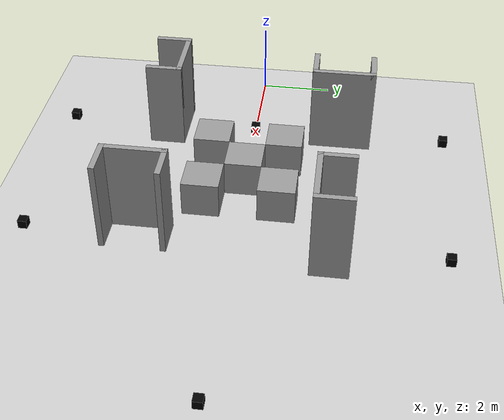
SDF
<sdf version="1.6">
 <world name="default">
  <light name="sun" type="directional">
   <pose>0 0 10 0 -0 0</pose>
   <diffuse>0.8 0.8 0.8 1</diffuse>
   <specular>0.2 0.2 0.2 1</specular>
   <attenuation>
    <range>1000</range>
    <constant>0.9</constant>
    <linear>0.01</linear>
    <quadratic>0.001</quadratic>
   </attenuation>
   <direction>-0.5 0.1 -0.9</direction>
  </light>
  <model name="ground_plane">
   <static>1</static>
   <link name="link">
    <collision name="collision">
     <geometry><plane><normal>0 0 1</normal><size>100 100</size></plane></geometry>
     <surface>
      <contact><collide_bitmask>65535</collide_bitmask></contact>
      <friction><ode><mu>100</mu><mu2>50</mu2></ode></friction>
     </surface>
    </collision>
    <visual name="visual">
     <cast_shadows>0</cast_shadows>
     <geometry><plane><normal>0 0 1</normal><size>100 100</size></plane></geometry>
     <material>
      <script><uri>file://media/materials/scripts/gazebo.material</uri><name>Gazebo/Grey</name></script>
     </material>
    </visual>
   </link>
  </model>
  <gravity>0 0 -9.8</gravity>
  <magnetic_field>6e-06 2.3e-05 -4.2e-05</magnetic_field>
  <atmosphere type="adiabatic"/>
  <physics name="default_physics" default="0" type="ode">
   <max_step_size>0.001</max_step_size>
   <real_time_factor>1</real_time_factor>
   <real_time_update_rate>1000</real_time_update_rate>
  </physics>
  <scene><ambient>0.4 0.4 0.4 1</ambient><background>0.7 0.7 0.7 1</background><shadows>1</shadows></scene>
  <audio><device>default</device></audio>
  <spherical_coordinates>
   <surface_model>EARTH_WGS84</surface_model>
   <latitude_deg>0</latitude_deg>
   <longitude_deg>0</longitude_deg>
   <elevation>0</elevation>
   <heading_deg>0</heading_deg>
  </spherical_coordinates>
  <model name="aruco_box_0">
   <link name="link_0">
    <inertial>
     <mass>1</mass>
     <inertia>
      <ixx>0.166667</ixx>
      <ixy>0</ixy>
      <ixz>0</ixz>
      <iyy>0.166667</iyy>
      <iyz>0</iyz>
      <izz>0.166667</izz>
     </inertia>
    </inertial>
    <visual name="visual">
     <geometry><box><size>0.24 0.24 0.24</size></box></geometry>
     <material>
      <lighting>1</lighting>
      <script>
       <uri>model://aruco_box_0/materials/scripts</uri>
       <uri>model://aruco_box_0/materials/textures</uri>
       <name>Aruco/Id0</name>
      </script>
      <shader type="vertex"><normal_map>__default__</normal_map></shader>
      <ambient>0 0 0 1</ambient>
      <diffuse>0 0 0 1</diffuse>
      <specular>0 0 0 0</specular>
      <emissive>1 1 1 1</emissive>
     </material>
    </visual>
    <collision name="collision">
     <geometry><box><size>0.24 0.24 0.24</size></box></geometry>
     <surface>
      <friction>
       <ode><mu>1</mu><mu2>1</mu2><fdir1>0 0 0</fdir1><slip1>0</slip1><slip2>0</slip2></ode>
       <torsional>
        <coefficient>1</coefficient>
        <patch_radius>0</patch_radius>
        <surface_radius>0</surface_radius>
        <use_patch_radius>1</use_patch_radius>
        <ode><slip>0</slip></ode>
       </torsional>
      </friction>
      <bounce><restitution_coefficient>0</restitution_coefficient><threshold>1e+06</threshold></bounce>
      <contact>
       <collide_without_contact>0</collide_without_contact>
       <collide_without_contact_bitmask>1</collide_without_contact_bitmask>
       <collide_bitmask>1</collide_bitmask>
       <ode>
        <soft_cfm>0</soft_cfm>
        <soft_erp>0.2</soft_erp>
        <kp>1e+13</kp>
        <kd>1</kd>
        <max_vel>0.01</max_vel>
        <min_depth>0</min_depth>
       </ode>
       <bullet>
        <split_impulse>1</split_impulse>
        <split_impulse_penetration_threshold>-0.01</split_impulse_penetration_threshold>
        <soft_cfm>0</soft_cfm>
        <soft_erp>0.2</soft_erp>
        <kp>1e+13</kp>
        <kd>1</kd>
       </bullet>
      </contact>
     </surface>
    </collision>
   </link>
   <static>0</static>
   <pose>2.5 0 0.12 0 -0 0</pose>
  </model>
  <model name="aruco_box_1">
   <link name="link_0">
    <inertial>
     <mass>1</mass>
     <inertia>
      <ixx>0.166667</ixx>
      <ixy>0</ixy>
      <ixz>0</ixz>
      <iyy>0.166667</iyy>
      <iyz>0</iyz>
      <izz>0.166667</izz>
     </inertia>
    </inertial>
    <visual name="visual">
     <geometry><box><size>0.24 0.24 0.24</size></box></geometry>
     <material>
      <lighting>1</lighting>
      <script>
       <uri>model://aruco_box_1/materials/scripts</uri>
       <uri>model://aruco_box_1/materials/textures</uri>
       <name>Aruco/Id1</name>
      </script>
      <shader type="vertex"><normal_map>__default__</normal_map></shader>
      <ambient>0 0 0 1</ambient>
      <diffuse>0 0 0 1</diffuse>
      <specular>0 0 0 0</specular>
      <emissive>1 1 1 1</emissive>
     </material>
    </visual>
    <collision name="collision">
     <geometry><box><size>0.24 0.24 0.24</size></box></geometry>
     <surface>
      <friction>
       <ode><mu>1</mu><mu2>1</mu2><fdir1>0 0 0</fdir1><slip1>0</slip1><slip2>0</slip2></ode>
       <torsional>
        <coefficient>1</coefficient>
        <patch_radius>0</patch_radius>
        <surface_radius>0</surface_radius>
        <use_patch_radius>1</use_patch_radius>
        <ode><slip>0</slip></ode>
       </torsional>
      </friction>
      <bounce><restitution_coefficient>0</restitution_coefficient><threshold>1e+06</threshold></bounce>
      <contact>
       <collide_without_contact>0</collide_without_contact>
       <collide_without_contact_bitmask>1</collide_without_contact_bitmask>
       <collide_bitmask>1</collide_bitmask>
       <ode>
        <soft_cfm>0</soft_cfm>
        <soft_erp>0.2</soft_erp>
        <kp>1e+13</kp>
        <kd>1</kd>
        <max_vel>0.01</max_vel>
        <min_depth>0</min_depth>
       </ode>
       <bullet>
        <split_impulse>1</split_impulse>
        <split_impulse_penetration_threshold>-0.01</split_impulse_penetration_threshold>
        <soft_cfm>0</soft_cfm>
        <soft_erp>0.2</soft_erp>
        <kp>1e+13</kp>
        <kd>1</kd>
       </bullet>
      </contact>
     </surface>
    </collision>
   </link>
   <static>0</static>
   <pose>2.5 5.5 0.12 0 -0 0</pose>
  </model>
  <model name="aruco_box_2">
   <link name="link_0">
    <inertial>
     <mass>1</mass>
     <inertia>
      <ixx>0.166667</ixx>
      <ixy>0</ixy>
      <ixz>0</ixz>
      <iyy>0.166667</iyy>
      <iyz>0</iyz>
      <izz>0.166667</izz>
     </inertia>
    </inertial>
    <visual name="visual">
     <geometry><box><size>0.24 0.24 0.24</size></box></geometry>
     <material>
      <lighting>1</lighting>
      <script>
       <uri>model://aruco_box_2/materials/scripts</uri>
       <uri>model://aruco_box_2/materials/textures</uri>
       <name>Aruco/Id2</name>
      </script>
      <shader type="vertex"><normal_map>__default__</normal_map></shader>
      <ambient>0 0 0 1</ambient>
      <diffuse>0 0 0 1</diffuse>
      <specular>0 0 0 0</specular>
      <emissive>1 1 1 1</emissive>
     </material>
    </visual>
    <collision name="collision">
     <geometry><box><size>0.24 0.24 0.24</size></box></geometry>
     <surface>
      <friction>
       <ode><mu>1</mu><mu2>1</mu2><fdir1>0 0 0</fdir1><slip1>0</slip1><slip2>0</slip2></ode>
       <torsional>
        <coefficient>1</coefficient>
        <patch_radius>0</patch_radius>
        <surface_radius>0</surface_radius>
        <use_patch_radius>1</use_patch_radius>
        <ode><slip>0</slip></ode>
       </torsional>
      </friction>
      <bounce><restitution_coefficient>0</restitution_coefficient><threshold>1e+06</threshold></bounce>
      <contact>
       <collide_without_contact>0</collide_without_contact>
       <collide_without_contact_bitmask>1</collide_without_contact_bitmask>
       <collide_bitmask>1</collide_bitmask>
       <ode>
        <soft_cfm>0</soft_cfm>
        <soft_erp>0.2</soft_erp>
        <kp>1e+13</kp>
        <kd>1</kd>
        <max_vel>0.01</max_vel>
        <min_depth>0</min_depth>
       </ode>
       <bullet>
        <split_impulse>1</split_impulse>
        <split_impulse_penetration_threshold>-0.01</split_impulse_penetration_threshold>
        <soft_cfm>0</soft_cfm>
        <soft_erp>0.2</soft_erp>
        <kp>1e+13</kp>
        <kd>1</kd>
       </bullet>
      </contact>
     </surface>
    </collision>
   </link>
   <static>0</static>
   <pose>7.5 5.5 0.12 0 -0 0</pose>
  </model>
  <model name="aruco_box_3">
   <link name="link_0">
    <inertial>
     <mass>1</mass>
     <inertia>
      <ixx>0.166667</ixx>
      <ixy>0</ixy>
      <ixz>0</ixz>
      <iyy>0.166667</iyy>
      <iyz>0</iyz>
      <izz>0.166667</izz>
     </inertia>
    </inertial>
    <visual name="visual">
     <geometry><box><size>0.24 0.24 0.24</size></box></geometry>
     <material>
      <lighting>1</lighting>
      <script>
       <uri>model://aruco_box_3/materials/scripts</uri>
       <uri>model://aruco_box_3/materials/textures</uri>
       <name>Aruco/Id3</name>
      </script>
      <shader type="vertex"><normal_map>__default__</normal_map></shader>
      <ambient>0 0 0 1</ambient>
      <diffuse>0 0 0 1</diffuse>
      <specular>0 0 0 0</specular>
      <emissive>1 1 1 1</emissive>
     </material>
    </visual>
    <collision name="collision">
     <geometry><box><size>0.24 0.24 0.24</size></box></geometry>
     <surface>
      <friction>
       <ode><mu>1</mu><mu2>1</mu2><fdir1>0 0 0</fdir1><slip1>0</slip1><slip2>0</slip2></ode>
       <torsional>
        <coefficient>1</coefficient>
        <patch_radius>0</patch_radius>
        <surface_radius>0</surface_radius>
        <use_patch_radius>1</use_patch_radius>
        <ode><slip>0</slip></ode>
       </torsional>
      </friction>
      <bounce><restitution_coefficient>0</restitution_coefficient><threshold>1e+06</threshold></bounce>
      <contact>
       <collide_without_contact>0</collide_without_contact>
       <collide_without_contact_bitmask>1</collide_without_contact_bitmask>
       <collide_bitmask>1</collide_bitmask>
       <ode>
        <soft_cfm>0</soft_cfm>
        <soft_erp>0.2</soft_erp>
        <kp>1e+13</kp>
        <kd>1</kd>
        <max_vel>0.01</max_vel>
        <min_depth>0</min_depth>
       </ode>
       <bullet>
        <split_impulse>1</split_impulse>
        <split_impulse_penetration_threshold>-0.01</split_impulse_penetration_threshold>
        <soft_cfm>0</soft_cfm>
        <soft_erp>0.2</soft_erp>
        <kp>1e+13</kp>
        <kd>1</kd>
       </bullet>
      </contact>
     </surface>
    </collision>
   </link>
   <static>0</static>
   <pose>12.5 0 0.12 0 -0 0</pose>
  </model>
  <model name="aruco_box_4">
   <link name="link_0">
    <inertial>
     <mass>1</mass>
     <inertia>
      <ixx>0.166667</ixx>
      <ixy>0</ixy>
      <ixz>0</ixz>
      <iyy>0.166667</iyy>
      <iyz>0</iyz>
      <izz>0.166667</izz>
     </inertia>
    </inertial>
    <visual name="visual">
     <geometry><box><size>0.24 0.24 0.24</size></box></geometry>
     <material>
      <lighting>1</lighting>
      <script>
       <uri>model://aruco_box_4/materials/scripts</uri>
       <uri>model://aruco_box_4/materials/textures</uri>
       <name>Aruco/Id4</name>
      </script>
      <shader type="vertex"><normal_map>__default__</normal_map></shader>
      <ambient>0 0 0 1</ambient>
      <diffuse>0 0 0 1</diffuse>
      <specular>0 0 0 0</specular>
      <emissive>1 1 1 1</emissive>
     </material>
    </visual>
    <collision name="collision">
     <geometry><box><size>0.24 0.24 0.24</size></box></geometry>
     <surface>
      <friction>
       <ode><mu>1</mu><mu2>1</mu2><fdir1>0 0 0</fdir1><slip1>0</slip1><slip2>0</slip2></ode>
       <torsional>
        <coefficient>1</coefficient>
        <patch_radius>0</patch_radius>
        <surface_radius>0</surface_radius>
        <use_patch_radius>1</use_patch_radius>
        <ode><slip>0</slip></ode>
       </torsional>
      </friction>
      <bounce><restitution_coefficient>0</restitution_coefficient><threshold>1e+06</threshold></bounce>
      <contact>
       <collide_without_contact>0</collide_without_contact>
       <collide_without_contact_bitmask>1</collide_without_contact_bitmask>
       <collide_bitmask>1</collide_bitmask>
       <ode>
        <soft_cfm>0</soft_cfm>
        <soft_erp>0.2</soft_erp>
        <kp>1e+13</kp>
        <kd>1</kd>
        <max_vel>0.01</max_vel>
        <min_depth>0</min_depth>
       </ode>
       <bullet>
        <split_impulse>1</split_impulse>
        <split_impulse_penetration_threshold>-0.01</split_impulse_penetration_threshold>
        <soft_cfm>0</soft_cfm>
        <soft_erp>0.2</soft_erp>
        <kp>1e+13</kp>
        <kd>1</kd>
       </bullet>
      </contact>
     </surface>
    </collision>
   </link>
   <static>0</static>
   <pose>7.5 -5.5 0.12 0 -0 0</pose>
  </model>
  <model name="aruco_box_5">
   <link name="link_0">
    <inertial>
     <mass>1</mass>
     <inertia>
      <ixx>0.166667</ixx>
      <ixy>0</ixy>
      <ixz>0</ixz>
      <iyy>0.166667</iyy>
      <iyz>0</iyz>
      <izz>0.166667</izz>
     </inertia>
    </inertial>
    <visual name="visual">
     <geometry><box><size>0.24 0.24 0.24</size></box></geometry>
     <material>
      <lighting>1</lighting>
      <script>
       <uri>model://aruco_box_5/materials/scripts</uri>
       <uri>model://aruco_box_5/materials/textures</uri>
       <name>Aruco/Id5</name>
      </script>
      <shader type="vertex"><normal_map>__default__</normal_map></shader>
      <ambient>0 0 0 1</ambient>
      <diffuse>0 0 0 1</diffuse>
      <specular>0 0 0 0</specular>
      <emissive>1 1 1 1</emissive>
     </material>
    </visual>
    <collision name="collision">
     <geometry><box><size>0.24 0.24 0.24</size></box></geometry>
     <surface>
      <friction>
       <ode><mu>1</mu><mu2>1</mu2><fdir1>0 0 0</fdir1><slip1>0</slip1><slip2>0</slip2></ode>
       <torsional>
        <coefficient>1</coefficient>
        <patch_radius>0</patch_radius>
        <surface_radius>0</surface_radius>
        <use_patch_radius>1</use_patch_radius>
        <ode><slip>0</slip></ode>
       </torsional>
      </friction>
      <bounce><restitution_coefficient>0</restitution_coefficient><threshold>1e+06</threshold></bounce>
      <contact>
       <collide_without_contact>0</collide_without_contact>
       <collide_without_contact_bitmask>1</collide_without_contact_bitmask>
       <collide_bitmask>1</collide_bitmask>
       <ode>
        <soft_cfm>0</soft_cfm>
        <soft_erp>0.2</soft_erp>
        <kp>1e+13</kp>
        <kd>1</kd>
        <max_vel>0.01</max_vel>
        <min_depth>0</min_depth>
       </ode>
       <bullet>
        <split_impulse>1</split_impulse>
        <split_impulse_penetration_threshold>-0.01</split_impulse_penetration_threshold>
        <soft_cfm>0</soft_cfm>
        <soft_erp>0.2</soft_erp>
        <kp>1e+13</kp>
        <kd>1</kd>
       </bullet>
      </contact>
     </surface>
    </collision>
   </link>
   <static>0</static>
   <pose>2.5 -5.5 0.12 0 -0 0</pose>
  </model>
  <model name="unit_box_11">
   <pose>5 -0 0.499995 0 1e-05 0</pose>
   <link name="link">
    <inertial>
     <mass>1</mass>
     <inertia>
      <ixx>0.166667</ixx>
      <ixy>0</ixy>
      <ixz>0</ixz>
      <iyy>0.166667</iyy>
      <iyz>0</iyz>
      <izz>0.166667</izz>
     </inertia>
    </inertial>
    <collision name="collision"><geometry><box><size>1 1 1</size></box></geometry></collision>
    <visual name="visual">
     <geometry><box><size>1 1 1</size></box></geometry>
     <material>
      <script><name>Gazebo/Grey</name><uri>file://media/materials/scripts/gazebo.material</uri></script>
     </material>
    </visual>
   </link>
  </model>
  <model name="simple_wall">
   <pose>2.5 2.5 0 0 0 -1.57</pose>
   <link name="Wall_34">
    <collision name="Wall_34_Collision">
     <geometry><box><size>1 0.15 2.5</size></box></geometry>
     <pose>0 0 1.25 0 -0 0</pose>
    </collision>
    <visual name="Wall_34_Visual">
     <pose>0 0 1.25 0 -0 0</pose>
     <geometry><box><size>1 0.15 2.5</size></box></geometry>
     <material>
      <script><uri>file://media/materials/scripts/gazebo.material</uri><name>Gazebo/Grey</name></script>
      <ambient>1 1 1 1</ambient>
     </material>
     <meta><layer>0</layer></meta>
    </visual>
    <pose>-0.8 0 0 0 -0 1.5708</pose>
   </link>
   <link name="Wall_35">
    <collision name="Wall_35_Collision">
     <geometry><box><size>1.75 0.15 2.5</size></box></geometry>
     <pose>0 0 1.25 0 -0 0</pose>
    </collision>
    <visual name="Wall_35_Visual">
     <pose>0 0 1.25 0 -0 0</pose>
     <geometry><box><size>1.75 0.15 2.5</size></box></geometry>
     <material>
      <script><uri>file://media/materials/scripts/gazebo.material</uri><name>Gazebo/Grey</name></script>
      <ambient>1 1 1 1</ambient>
     </material>
     <meta><layer>0</layer></meta>
    </visual>
    <pose>0 0.425 0 0 -0 0</pose>
   </link>
   <link name="Wall_36">
    <collision name="Wall_36_Collision">
     <geometry><box><size>1 0.15 2.5</size></box></geometry>
     <pose>0 0 1.25 0 -0 0</pose>
    </collision>
    <visual name="Wall_36_Visual">
     <pose>0 0 1.25 0 -0 0</pose>
     <geometry><box><size>1 0.15 2.5</size></box></geometry>
     <material>
      <script><uri>file://media/materials/scripts/gazebo.material</uri><name>Gazebo/Grey</name></script>
      <ambient>1 1 1 1</ambient>
     </material>
     <meta><layer>0</layer></meta>
    </visual>
    <pose>0.8 0 0 0 -0 -1.5708</pose>
   </link>
   <static>1</static>
  </model>
  <model name="simple_wall_0">
   <pose>7.5 2.5 0 0 -0 -3.14159</pose>
   <link name="Wall_34">
    <collision name="Wall_34_Collision">
     <geometry><box><size>1 0.15 2.5</size></box></geometry>
     <pose>0 0 1.25 0 -0 0</pose>
    </collision>
    <visual name="Wall_34_Visual">
     <pose>0 0 1.25 0 -0 0</pose>
     <geometry><box><size>1 0.15 2.5</size></box></geometry>
     <material>
      <script><uri>file://media/materials/scripts/gazebo.material</uri><name>Gazebo/Grey</name></script>
      <ambient>1 1 1 1</ambient>
     </material>
     <meta><layer>0</layer></meta>
    </visual>
    <pose>-0.8 0 0 0 -0 1.5708</pose>
   </link>
   <link name="Wall_35">
    <collision name="Wall_35_Collision">
     <geometry><box><size>1.75 0.15 2.5</size></box></geometry>
     <pose>0 0 1.25 0 -0 0</pose>
    </collision>
    <visual name="Wall_35_Visual">
     <pose>0 0 1.25 0 -0 0</pose>
     <geometry><box><size>1.75 0.15 2.5</size></box></geometry>
     <material>
      <script><uri>file://media/materials/scripts/gazebo.material</uri><name>Gazebo/Grey</name></script>
      <ambient>1 1 1 1</ambient>
     </material>
     <meta><layer>0</layer></meta>
    </visual>
    <pose>0 0.425 0 0 -0 0</pose>
   </link>
   <link name="Wall_36">
    <collision name="Wall_36_Collision">
     <geometry><box><size>1 0.15 2.5</size></box></geometry>
     <pose>0 0 1.25 0 -0 0</pose>
    </collision>
    <visual name="Wall_36_Visual">
     <pose>0 0 1.25 0 -0 0</pose>
     <geometry><box><size>1 0.15 2.5</size></box></geometry>
     <material>
      <script><uri>file://media/materials/scripts/gazebo.material</uri><name>Gazebo/Grey</name></script>
      <ambient>1 1 1 1</ambient>
     </material>
     <meta><layer>0</layer></meta>
    </visual>
    <pose>0.8 0 0 0 -0 -1.5708</pose>
   </link>
   <static>1</static>
  </model>
  <model name="simple_wall_1">
   <pose>7.5 -2.5 0 0 -0 1.57</pose>
   <link name="Wall_34">
    <collision name="Wall_34_Collision">
     <geometry><box><size>1 0.15 2.5</size></box></geometry>
     <pose>0 0 1.25 0 -0 0</pose>
    </collision>
    <visual name="Wall_34_Visual">
     <pose>0 0 1.25 0 -0 0</pose>
     <geometry><box><size>1 0.15 2.5</size></box></geometry>
     <material>
      <script><uri>file://media/materials/scripts/gazebo.material</uri><name>Gazebo/Grey</name></script>
      <ambient>1 1 1 1</ambient>
     </material>
     <meta><layer>0</layer></meta>
    </visual>
    <pose>-0.8 0 0 0 -0 1.5708</pose>
   </link>
   <link name="Wall_35">
    <collision name="Wall_35_Collision">
     <geometry><box><size>1.75 0.15 2.5</size></box></geometry>
     <pose>0 0 1.25 0 -0 0</pose>
    </collision>
    <visual name="Wall_35_Visual">
     <pose>0 0 1.25 0 -0 0</pose>
     <geometry><box><size>1.75 0.15 2.5</size></box></geometry>
     <material>
      <script><uri>file://media/materials/scripts/gazebo.material</uri><name>Gazebo/Grey</name></script>
      <ambient>1 1 1 1</ambient>
     </material>
     <meta><layer>0</layer></meta>
    </visual>
    <pose>0 0.425 0 0 -0 0</pose>
   </link>
   <link name="Wall_36">
    <collision name="Wall_36_Collision">
     <geometry><box><size>1 0.15 2.5</size></box></geometry>
     <pose>0 0 1.25 0 -0 0</pose>
    </collision>
    <visual name="Wall_36_Visual">
     <pose>0 0 1.25 0 -0 0</pose>
     <geometry><box><size>1 0.15 2.5</size></box></geometry>
     <material>
      <script><uri>file://media/materials/scripts/gazebo.material</uri><name>Gazebo/Grey</name></script>
      <ambient>1 1 1 1</ambient>
     </material>
     <meta><layer>0</layer></meta>
    </visual>
    <pose>0.8 0 0 0 -0 -1.5708</pose>
   </link>
   <static>1</static>
  </model>
  <model name="simple_wall_2">
   <pose>2.5 -2.5 0 0 -0 0</pose>
   <link name="Wall_34">
    <collision name="Wall_34_Collision">
     <geometry><box><size>1 0.15 2.5</size></box></geometry>
     <pose>0 0 1.25 0 -0 0</pose>
    </collision>
    <visual name="Wall_34_Visual">
     <pose>0 0 1.25 0 -0 0</pose>
     <geometry><box><size>1 0.15 2.5</size></box></geometry>
     <material>
      <script><uri>file://media/materials/scripts/gazebo.material</uri><name>Gazebo/Grey</name></script>
      <ambient>1 1 1 1</ambient>
     </material>
     <meta><layer>0</layer></meta>
    </visual>
    <pose>-0.8 0 0 0 -0 1.5708</pose>
   </link>
   <link name="Wall_35">
    <collision name="Wall_35_Collision">
     <geometry><box><size>1.75 0.15 2.5</size></box></geometry>
     <pose>0 0 1.25 0 -0 0</pose>
    </collision>
    <visual name="Wall_35_Visual">
     <pose>0 0 1.25 0 -0 0</pose>
     <geometry><box><size>1.75 0.15 2.5</size></box></geometry>
     <material>
      <script><uri>file://media/materials/scripts/gazebo.material</uri><name>Gazebo/Grey</name></script>
      <ambient>1 1 1 1</ambient>
     </material>
     <meta><layer>0</layer></meta>
    </visual>
    <pose>0 0.425 0 0 -0 0</pose>
   </link>
   <link name="Wall_36">
    <collision name="Wall_36_Collision">
     <geometry><box><size>1 0.15 2.5</size></box></geometry>
     <pose>0 0 1.25 0 -0 0</pose>
    </collision>
    <visual name="Wall_36_Visual">
     <pose>0 0 1.25 0 -0 0</pose>
     <geometry><box><size>1 0.15 2.5</size></box></geometry>
     <material>
      <script><uri>file://media/materials/scripts/gazebo.material</uri><name>Gazebo/Grey</name></script>
      <ambient>1 1 1 1</ambient>
     </material>
     <meta><layer>0</layer></meta>
    </visual>
    <pose>0.8 0 0 0 -0 -1.5708</pose>
   </link>
   <static>1</static>
  </model>
  <model name="unit_box">
   <pose>6 1 0.5 0 -0 0</pose>
   <link name="link">
    <inertial>
     <mass>1</mass>
     <inertia>
      <ixx>0.166667</ixx>
      <ixy>0</ixy>
      <ixz>0</ixz>
      <iyy>0.166667</iyy>
      <iyz>0</iyz>
      <izz>0.166667</izz>
     </inertia>
    </inertial>
    <collision name="collision"><geometry><box><size>1 1 1</size></box></geometry></collision>
    <visual name="visual">
     <geometry><box><size>1 1 1</size></box></geometry>
     <material>
      <script><name>Gazebo/Grey</name><uri>file://media/materials/scripts/gazebo.material</uri></script>
     </material>
    </visual>
   </link>
  </model>
  <model name="unit_box_0">
   <pose>6 -1 0.5 0 -0 0</pose>
   <link name="link">
    <inertial>
     <mass>1</mass>
     <inertia>
      <ixx>0.166667</ixx>
      <ixy>0</ixy>
      <ixz>0</ixz>
      <iyy>0.166667</iyy>
      <iyz>0</iyz>
      <izz>0.166667</izz>
     </inertia>
    </inertial>
    <collision name="collision"><geometry><box><size>1 1 1</size></box></geometry></collision>
    <visual name="visual">
     <geometry><box><size>1 1 1</size></box></geometry>
     <material>
      <script><name>Gazebo/Grey</name><uri>file://media/materials/scripts/gazebo.material</uri></script>
     </material>
    </visual>
   </link>
  </model>
  <model name="unit_box_1">
   <pose>4 1 0.5 0 -0 0</pose>
   <link name="link">
    <inertial>
     <mass>1</mass>
     <inertia>
      <ixx>0.166667</ixx>
      <ixy>0</ixy>
      <ixz>0</ixz>
      <iyy>0.166667</iyy>
      <iyz>0</iyz>
      <izz>0.166667</izz>
     </inertia>
    </inertial>
    <collision name="collision"><geometry><box><size>1 1 1</size></box></geometry></collision>
    <visual name="visual">
     <geometry><box><size>1 1 1</size></box></geometry>
     <material>
      <script><name>Gazebo/Grey</name><uri>file://media/materials/scripts/gazebo.material</uri></script>
     </material>
    </visual>
   </link>
  </model>
  <model name="unit_box_2">
   <pose>4 -1 0.5 0 -0 0</pose>
   <link name="link">
    <inertial>
     <mass>1</mass>
     <inertia>
      <ixx>0.166667</ixx>
      <ixy>0</ixy>
      <ixz>0</ixz>
      <iyy>0.166667</iyy>
      <iyz>0</iyz>
      <izz>0.166667</izz>
     </inertia>
    </inertial>
    <collision name="collision"><geometry><box><size>1 1 1</size></box></geometry></collision>
    <visual name="visual">
     <geometry><box><size>1 1 1</size></box></geometry>
     <material>
      <script><name>Gazebo/Grey</name><uri>file://media/materials/scripts/gazebo.material</uri></script>
     </material>
    </visual>
   </link>
  </model>
 </world>
</sdf>
